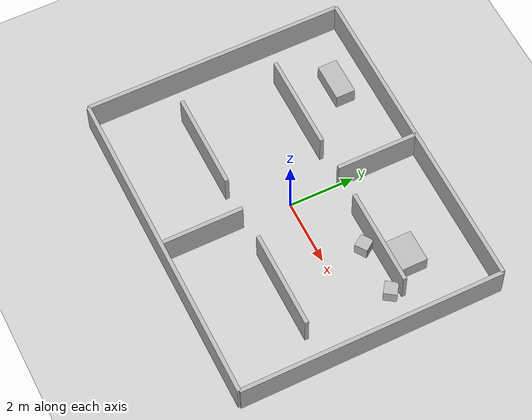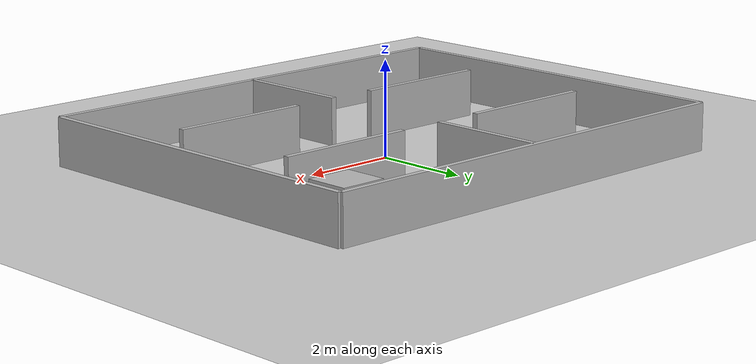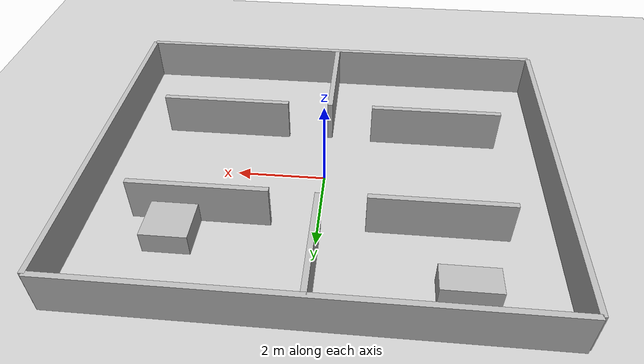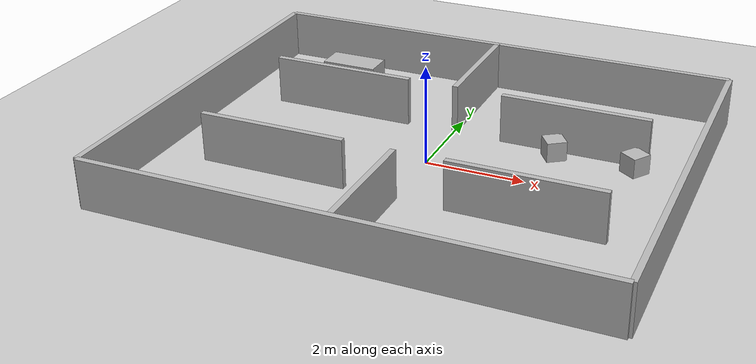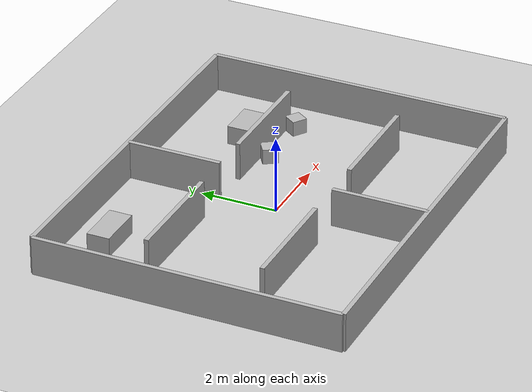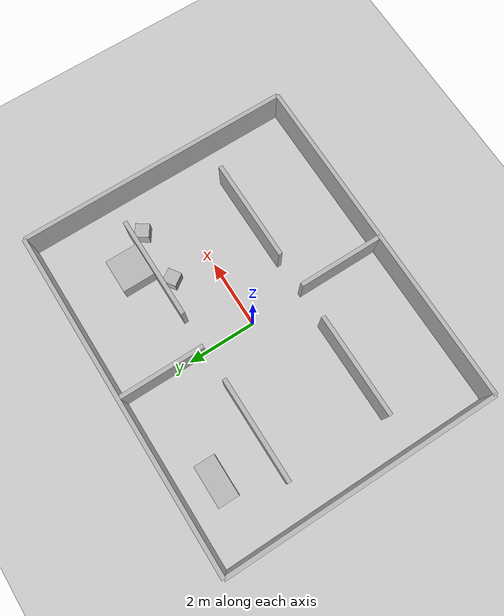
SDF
<?xml version="1.0" ?>
<sdf version="1.6">
  <world name="house_v1">

    <include><uri>model://sun</uri></include>
    <include><uri>model://ground_plane</uri></include>

    <!-- Pared exterior: rectángulo 10 x 8 -->
    <model name="outer_north">
      <static>true</static>
      <pose>0 4 0.5 0 0 0</pose>
      <link name="link">
        <collision name="collision"><geometry><box><size>10 0.12 1</size></box></geometry></collision>
        <visual name="visual"><geometry><box><size>10 0.12 1</size></box></geometry></visual>
      </link>
    </model>

    <model name="outer_south">
      <static>true</static>
      <pose>0 -4 0.5 0 0 0</pose>
      <link name="link">
        <collision name="collision"><geometry><box><size>10 0.12 1</size></box></geometry></collision>
        <visual name="visual"><geometry><box><size>10 0.12 1</size></box></geometry></visual>
      </link>
    </model>

    <model name="outer_east">
      <static>true</static>
      <pose>5 0 0.5 0 0 0</pose>
      <link name="link">
        <collision name="collision"><geometry><box><size>0.12 8 1</size></box></geometry></collision>
        <visual name="visual"><geometry><box><size>0.12 8 1</size></box></geometry></visual>
      </link>
    </model>

    <model name="outer_west">
      <static>true</static>
      <pose>-5 0 0.5 0 0 0</pose>
      <link name="link">
        <collision name="collision"><geometry><box><size>0.12 8 1</size></box></geometry></collision>
        <visual name="visual"><geometry><box><size>0.12 8 1</size></box></geometry></visual>
      </link>
    </model>

    <!-- Pasillo central (paredes con "puertas": dejamos huecos) -->
    <!-- Pared interior norte (dos segmentos con hueco de puerta en el centro) -->
    <model name="inner_north_left">
      <static>true</static>
      <pose>-2.5 1.5 0.5 0 0 0</pose>
      <link name="link">
        <collision name="collision"><geometry><box><size>3 0.12 1</size></box></geometry></collision>
        <visual name="visual"><geometry><box><size>3 0.12 1</size></box></geometry></visual>
      </link>
    </model>

    <model name="inner_north_right">
      <static>true</static>
      <pose>2.5 1.5 0.5 0 0 0</pose>
      <link name="link">
        <collision name="collision"><geometry><box><size>3 0.12 1</size></box></geometry></collision>
        <visual name="visual"><geometry><box><size>3 0.12 1</size></box></geometry></visual>
      </link>
    </model>

    <!-- Pared interior sur (dos segmentos con hueco de puerta) -->
    <model name="inner_south_left">
      <static>true</static>
      <pose>-2.5 -1.5 0.5 0 0 0</pose>
      <link name="link">
        <collision name="collision"><geometry><box><size>3 0.12 1</size></box></geometry></collision>
        <visual name="visual"><geometry><box><size>3 0.12 1</size></box></geometry></visual>
      </link>
    </model>

    <model name="inner_south_right">
      <static>true</static>
      <pose>2.5 -1.5 0.5 0 0 0</pose>
      <link name="link">
        <collision name="collision"><geometry><box><size>3 0.12 1</size></box></geometry></collision>
        <visual name="visual"><geometry><box><size>3 0.12 1</size></box></geometry></visual>
      </link>
    </model>

    <!-- Pared vertical central (divide dos habitaciones, deja paso en medio) -->
    <model name="inner_center_top">
      <static>true</static>
      <pose>0 2.75 0.5 0 0 0</pose>
      <link name="link">
        <collision name="collision"><geometry><box><size>0.12 2.5 1</size></box></geometry></collision>
        <visual name="visual"><geometry><box><size>0.12 2.5 1</size></box></geometry></visual>
      </link>
    </model>

    <model name="inner_center_bottom">
      <static>true</static>
      <pose>0 -2.75 0.5 0 0 0</pose>
      <link name="link">
        <collision name="collision"><geometry><box><size>0.12 2.5 1</size></box></geometry></collision>
        <visual name="visual"><geometry><box><size>0.12 2.5 1</size></box></geometry></visual>
      </link>
    </model>

    <!-- Muebles (obstáculos simples) -->
    <model name="sofa">
      <static>true</static>
      <pose>-3 3 0.25 0 0 0</pose>
      <link name="link">
        <collision name="collision"><geometry><box><size>1.2 0.6 0.5</size></box></geometry></collision>
        <visual name="visual"><geometry><box><size>1.2 0.6 0.5</size></box></geometry></visual>
      </link>
    </model>

    <model name="table">
      <static>true</static>
      <pose>3 2 0.25 0 0 0</pose>
      <link name="link">
        <collision name="collision"><geometry><box><size>1.0 1.0 0.5</size></box></geometry></collision>
        <visual name="visual"><geometry><box><size>1.0 1.0 0.5</size></box></geometry></visual>
      </link>
    </model>

    <model name="chair_1">
      <static>true</static>
      <pose>2.2 1.2 0.2 0 0 0.6</pose>
      <link name="link">
        <collision name="collision"><geometry><box><size>0.4 0.4 0.4</size></box></geometry></collision>
        <visual name="visual"><geometry><box><size>0.4 0.4 0.4</size></box></geometry></visual>
      </link>
    </model>

    <model name="chair_2">
      <static>true</static>
      <pose>3.8 1.2 0.2 0 0 -0.6</pose>
      <link name="link">
        <collision name="collision"><geometry><box><size>0.4 0.4 0.4</size></box></geometry></collision>
        <visual name="visual"><geometry><box><size>0.4 0.4 0.4</size></box></geometry></visual>
      </link>
    </model>

  </world>
</sdf>
